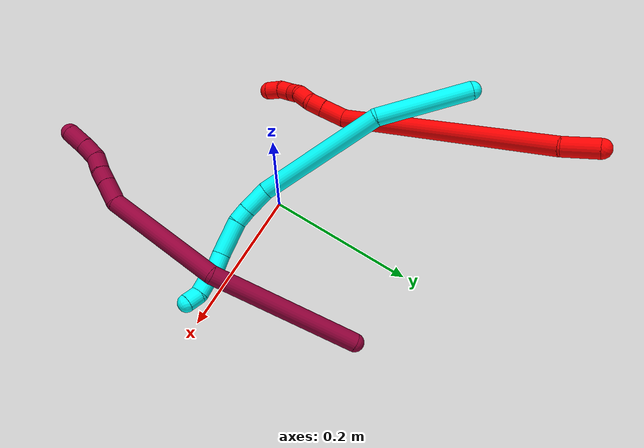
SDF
<sdf version="1.7">
 <world name="default">
  <model name="photoneo_s_sensor">
   <static>1</static>
   <pose>0 0 2 1.57079 1.57079 3.14159</pose>
   <link name="link">
    <inertial><mass>0.1</mass></inertial>
    <sensor name="sensor" type="depth">
     <update_rate>30</update_rate>
     <camera>
      <horizontal_fov>1.22</horizontal_fov>
      <image><width>1920</width><height>1200</height><format>B8G8R8</format></image>
      <clip><near>0.1</near><far>2</far></clip>
      <depth_camera><output>points</output></depth_camera>
     </camera>
     <plugin name="camera_plugin" filename="libgazebo_ros_depth_camera.so">
      <baseline>0.2</baseline>
      <alwaysOn>1</alwaysOn>
      <updateRate>0.0</updateRate>
      <cameraName>camera_ir</cameraName>
      <imageTopicName>/camera/color/image_raw</imageTopicName>
      <cameraInfoTopicName>/camera/color/camera_info</cameraInfoTopicName>
      <depthImageTopicName>/camera/depth/image_raw</depthImageTopicName>
      <depthImageCameraInfoTopicName>/camera/depth/camera_info</depthImageCameraInfoTopicName>
      <pointCloudTopicName>/camera/depth/points</pointCloudTopicName>
      <frameName>fr_optical</frameName>
      <pointCloudCutoff>0.1</pointCloudCutoff>
      <pointCloudCutoffMax>2.0</pointCloudCutoffMax>
      <distortionK1>0</distortionK1>
      <distortionK2>0</distortionK2>
      <distortionK3>0</distortionK3>
      <distortionT1>0</distortionT1>
      <distortionT2>0</distortionT2>
      <CxPrime>0</CxPrime>
      <Cx>0</Cx>
      <Cy>0</Cy>
      <focalLength>0</focalLength>
      <hackBaseline>0</hackBaseline>
     </plugin>
    </sensor>
   </link>
  </model>
  <model name="bin">
   <static>1</static>
   <link name="bottom">
    <collision name="collision-bottom">
     <pose>0 0 -0.01 0 -0 0</pose>
     <geometry><box><size>0.8 0.6 0.02</size></box></geometry>
     <surface>
      <friction><ode><mu>100</mu><mu2>100</mu2></ode></friction>
      <contact><collide_bitmask>65535</collide_bitmask></contact>
     </surface>
    </collision>
   </link>
   <link name="west_wall">
    <collision name="collision-west_wall">
     <pose>-0.41 0 0.1 0 -0 0</pose>
     <geometry><box><size>0.02 0.6 0.2</size></box></geometry>
     <surface>
      <friction><ode><mu>100</mu><mu2>100</mu2></ode></friction>
      <contact><collide_bitmask>65535</collide_bitmask></contact>
     </surface>
    </collision>
   </link>
   <link name="east_wall">
    <collision name="collision-east_wall">
     <pose>0.41 0 0.1 0 -0 0</pose>
     <geometry><box><size>0.02 0.6 0.2</size></box></geometry>
     <surface>
      <friction><ode><mu>100</mu><mu2>100</mu2></ode></friction>
      <contact><collide_bitmask>65535</collide_bitmask></contact>
     </surface>
    </collision>
   </link>
   <link name="south_wall">
    <collision name="collision-south_wall">
     <pose>0 -0.31 0.1 0 -0 0</pose>
     <geometry><box><size>0.8 0.02 0.2</size></box></geometry>
     <surface>
      <friction><ode><mu>100</mu><mu2>100</mu2></ode></friction>
      <contact><collide_bitmask>65535</collide_bitmask></contact>
     </surface>
    </collision>
   </link>
   <link name="north_wall">
    <collision name="collision-north_wall">
     <pose>0 0.31 0.1 0 -0 0</pose>
     <geometry><box><size>0.8 0.02 0.2</size></box></geometry>
     <surface>
      <friction><ode><mu>100</mu><mu2>100</mu2></ode></friction>
      <contact><collide_bitmask>65535</collide_bitmask></contact>
     </surface>
    </collision>
   </link>
  </model>
  <model name="2">
   <static>0</static>
   <link name="2">
    <collision name="collision-cylinder-e_1_1_4">
     <pose>0.006966 -0.015955 -0.014883 2.32145 0.309032 0.688093</pose>
     <geometry><cylinder><radius>0.0125</radius><length>0.045808</length></cylinder></geometry>
     <surface>
      <friction><ode><mu>1.16</mu><mu2>1.16</mu2><slip1>0</slip1><slip2>0</slip2></ode></friction>
      <contact><ode><kp>1e+06</kp><kd>1</kd><max_vel>0</max_vel><min_depth>0.001</min_depth></ode></contact>
     </surface>
    </collision>
    <visual name="visual-cylinder-e_1_1_4">
     <pose>0.006966 -0.015955 -0.014883 2.32145 0.309032 0.688093</pose>
     <geometry><cylinder><radius>0.0125</radius><length>0.045808</length></cylinder></geometry>
     <material><ambient>1 0 0 1</ambient></material>
    </visual>
    <collision name="collision-cylinder-e_2_4_5">
     <pose>0.021258 -0.141021 -0.142384 2.37201 0.046687 0.115176</pose>
     <geometry><cylinder><radius>0.0125</radius><length>0.313954</length></cylinder></geometry>
     <surface>
      <friction><ode><mu>1.16</mu><mu2>1.16</mu2><slip1>0</slip1><slip2>0</slip2></ode></friction>
      <contact><ode><kp>1e+06</kp><kd>1</kd><max_vel>0</max_vel><min_depth>0.001</min_depth></ode></contact>
     </surface>
    </collision>
    <visual name="visual-cylinder-e_2_4_5">
     <pose>0.021258 -0.141021 -0.142384 2.37201 0.046687 0.115176</pose>
     <geometry><cylinder><radius>0.0125</radius><length>0.313954</length></cylinder></geometry>
     <material><ambient>1 0 0 1</ambient></material>
    </visual>
    <collision name="collision-cylinder-e_3_5_6">
     <pose>0.031619 -0.266067 -0.261311 1.94777 0.17526 0.257118</pose>
     <geometry><cylinder><radius>0.0125</radius><length>0.034808</length></cylinder></geometry>
     <surface>
      <friction><ode><mu>1.16</mu><mu2>1.16</mu2><slip1>0</slip1><slip2>0</slip2></ode></friction>
      <contact><ode><kp>1e+06</kp><kd>1</kd><max_vel>0</max_vel><min_depth>0.001</min_depth></ode></contact>
     </surface>
    </collision>
    <visual name="visual-cylinder-e_3_5_6">
     <pose>0.031619 -0.266067 -0.261311 1.94777 0.17526 0.257118</pose>
     <geometry><cylinder><radius>0.0125</radius><length>0.034808</length></cylinder></geometry>
     <material><ambient>1 0 0 1</ambient></material>
    </visual>
    <collision name="collision-cylinder-e_4_6_7">
     <pose>0.037137 -0.291838 -0.270623 1.86716 0.236928 0.318851</pose>
     <geometry><cylinder><radius>0.0125</radius><length>0.021162</length></cylinder></geometry>
     <surface>
      <friction><ode><mu>1.16</mu><mu2>1.16</mu2><slip1>0</slip1><slip2>0</slip2></ode></friction>
      <contact><ode><kp>1e+06</kp><kd>1</kd><max_vel>0</max_vel><min_depth>0.001</min_depth></ode></contact>
     </surface>
    </collision>
    <visual name="visual-cylinder-e_4_6_7">
     <pose>0.037137 -0.291838 -0.270623 1.86716 0.236928 0.318851</pose>
     <geometry><cylinder><radius>0.0125</radius><length>0.021162</length></cylinder></geometry>
     <material><ambient>1 0 0 1</ambient></material>
    </visual>
    <collision name="collision-cylinder-e_5_7_8">
     <pose>0.037165 -0.311986 -0.279152 2.06267 -0.206951 -0.343489</pose>
     <geometry><cylinder><radius>0.0125</radius><length>0.023906</length></cylinder></geometry>
     <surface>
      <friction><ode><mu>1.16</mu><mu2>1.16</mu2><slip1>0</slip1><slip2>0</slip2></ode></friction>
      <contact><ode><kp>1e+06</kp><kd>1</kd><max_vel>0</max_vel><min_depth>0.001</min_depth></ode></contact>
     </surface>
    </collision>
    <visual name="visual-cylinder-e_5_7_8">
     <pose>0.037165 -0.311986 -0.279152 2.06267 -0.206951 -0.343489</pose>
     <geometry><cylinder><radius>0.0125</radius><length>0.023906</length></cylinder></geometry>
     <material><ambient>1 0 0 1</ambient></material>
    </visual>
    <collision name="collision-cylinder-e_6_8_9">
     <pose>0.031875 -0.328074 -0.292358 2.49676 -0.286687 -0.815633</pose>
     <geometry><cylinder><radius>0.0125</radius><length>0.020041</length></cylinder></geometry>
     <surface>
      <friction><ode><mu>1.16</mu><mu2>1.16</mu2><slip1>0</slip1><slip2>0</slip2></ode></friction>
      <contact><ode><kp>1e+06</kp><kd>1</kd><max_vel>0</max_vel><min_depth>0.001</min_depth></ode></contact>
     </surface>
    </collision>
    <visual name="visual-cylinder-e_6_8_9">
     <pose>0.031875 -0.328074 -0.292358 2.49676 -0.286687 -0.815633</pose>
     <geometry><cylinder><radius>0.0125</radius><length>0.020041</length></cylinder></geometry>
     <material><ambient>1 0 0 1</ambient></material>
    </visual>
    <collision name="collision-cylinder-e_7_9_10">
     <pose>0.02985 -0.341911 -0.305976 2.20569 0.080619 0.159267</pose>
     <geometry><cylinder><radius>0.0125</radius><length>0.020085</length></cylinder></geometry>
     <surface>
      <friction><ode><mu>1.16</mu><mu2>1.16</mu2><slip1>0</slip1><slip2>0</slip2></ode></friction>
      <contact><ode><kp>1e+06</kp><kd>1</kd><max_vel>0</max_vel><min_depth>0.001</min_depth></ode></contact>
     </surface>
    </collision>
    <visual name="visual-cylinder-e_7_9_10">
     <pose>0.02985 -0.341911 -0.305976 2.20569 0.080619 0.159267</pose>
     <geometry><cylinder><radius>0.0125</radius><length>0.020085</length></cylinder></geometry>
     <material><ambient>1 0 0 1</ambient></material>
    </visual>
    <collision name="collision-cylinder-e_8_10_2">
     <pose>0.033676 -0.356118 -0.319361 2.4516 0.302737 0.802815</pose>
     <geometry><cylinder><radius>0.0125</radius><length>0.020236</length></cylinder></geometry>
     <surface>
      <friction><ode><mu>1.16</mu><mu2>1.16</mu2><slip1>0</slip1><slip2>0</slip2></ode></friction>
      <contact><ode><kp>1e+06</kp><kd>1</kd><max_vel>0</max_vel><min_depth>0.001</min_depth></ode></contact>
     </surface>
    </collision>
    <visual name="visual-cylinder-e_8_10_2">
     <pose>0.033676 -0.356118 -0.319361 2.4516 0.302737 0.802815</pose>
     <geometry><cylinder><radius>0.0125</radius><length>0.020236</length></cylinder></geometry>
     <material><ambient>1 0 0 1</ambient></material>
    </visual>
    <collision name="collision-sphere-2">
     <pose>0.036692 -0.362265 -0.32681 0 -0 0</pose>
     <geometry><sphere><radius>0.0125</radius></sphere></geometry>
     <surface>
      <friction><ode><mu>1.16</mu><mu2>1.16</mu2><slip1>0</slip1><slip2>0</slip2></ode></friction>
      <contact><ode><kp>1e+06</kp><kd>1</kd><max_vel>0</max_vel><min_depth>0.001</min_depth></ode></contact>
     </surface>
    </collision>
    <visual name="visual-sphere-2">
     <pose>0.036692 -0.362265 -0.32681 0 -0 0</pose>
     <geometry><sphere><radius>0.0125</radius></sphere></geometry>
     <material><ambient>1 0 0 1</ambient></material>
    </visual>
    <collision name="collision-sphere-10">
     <pose>0.030659 -0.34997 -0.311913 0 -0 0</pose>
     <geometry><sphere><radius>0.0125</radius></sphere></geometry>
     <surface>
      <friction><ode><mu>1.16</mu><mu2>1.16</mu2><slip1>0</slip1><slip2>0</slip2></ode></friction>
      <contact><ode><kp>1e+06</kp><kd>1</kd><max_vel>0</max_vel><min_depth>0.001</min_depth></ode></contact>
     </surface>
    </collision>
    <visual name="visual-sphere-10">
     <pose>0.030659 -0.34997 -0.311913 0 -0 0</pose>
     <geometry><sphere><radius>0.0125</radius></sphere></geometry>
     <material><ambient>1 0 0 1</ambient></material>
    </visual>
    <collision name="collision-sphere-9">
     <pose>0.029042 -0.333852 -0.300039 0 -0 0</pose>
     <geometry><sphere><radius>0.0125</radius></sphere></geometry>
     <surface>
      <friction><ode><mu>1.16</mu><mu2>1.16</mu2><slip1>0</slip1><slip2>0</slip2></ode></friction>
      <contact><ode><kp>1e+06</kp><kd>1</kd><max_vel>0</max_vel><min_depth>0.001</min_depth></ode></contact>
     </surface>
    </collision>
    <visual name="visual-sphere-9">
     <pose>0.029042 -0.333852 -0.300039 0 -0 0</pose>
     <geometry><sphere><radius>0.0125</radius></sphere></geometry>
     <material><ambient>1 0 0 1</ambient></material>
    </visual>
    <collision name="collision-sphere-4">
     <pose>0.013932 -0.03191 -0.029766 0 -0 0</pose>
     <geometry><sphere><radius>0.0125</radius></sphere></geometry>
     <surface>
      <friction><ode><mu>1.16</mu><mu2>1.16</mu2><slip1>0</slip1><slip2>0</slip2></ode></friction>
      <contact><ode><kp>1e+06</kp><kd>1</kd><max_vel>0</max_vel><min_depth>0.001</min_depth></ode></contact>
     </surface>
    </collision>
    <visual name="visual-sphere-4">
     <pose>0.013932 -0.03191 -0.029766 0 -0 0</pose>
     <geometry><sphere><radius>0.0125</radius></sphere></geometry>
     <material><ambient>1 0 0 1</ambient></material>
    </visual>
    <collision name="collision-sphere-1">
     <geometry><sphere><radius>0.0125</radius></sphere></geometry>
     <surface>
      <friction><ode><mu>1.16</mu><mu2>1.16</mu2><slip1>0</slip1><slip2>0</slip2></ode></friction>
      <contact><ode><kp>1e+06</kp><kd>1</kd><max_vel>0</max_vel><min_depth>0.001</min_depth></ode></contact>
     </surface>
    </collision>
    <visual name="visual-sphere-1">
     <geometry><sphere><radius>0.0125</radius></sphere></geometry>
     <material><ambient>1 0 0 1</ambient></material>
    </visual>
    <collision name="collision-sphere-8">
     <pose>0.034709 -0.322297 -0.284676 0 -0 0</pose>
     <geometry><sphere><radius>0.0125</radius></sphere></geometry>
     <surface>
      <friction><ode><mu>1.16</mu><mu2>1.16</mu2><slip1>0</slip1><slip2>0</slip2></ode></friction>
      <contact><ode><kp>1e+06</kp><kd>1</kd><max_vel>0</max_vel><min_depth>0.001</min_depth></ode></contact>
     </surface>
    </collision>
    <visual name="visual-sphere-8">
     <pose>0.034709 -0.322297 -0.284676 0 -0 0</pose>
     <geometry><sphere><radius>0.0125</radius></sphere></geometry>
     <material><ambient>1 0 0 1</ambient></material>
    </visual>
    <collision name="collision-sphere-5">
     <pose>0.028584 -0.250133 -0.255003 0 -0 0</pose>
     <geometry><sphere><radius>0.0125</radius></sphere></geometry>
     <surface>
      <friction><ode><mu>1.16</mu><mu2>1.16</mu2><slip1>0</slip1><slip2>0</slip2></ode></friction>
      <contact><ode><kp>1e+06</kp><kd>1</kd><max_vel>0</max_vel><min_depth>0.001</min_depth></ode></contact>
     </surface>
    </collision>
    <visual name="visual-sphere-5">
     <pose>0.028584 -0.250133 -0.255003 0 -0 0</pose>
     <geometry><sphere><radius>0.0125</radius></sphere></geometry>
     <material><ambient>1 0 0 1</ambient></material>
    </visual>
    <collision name="collision-sphere-6">
     <pose>0.034654 -0.282001 -0.267619 0 -0 0</pose>
     <geometry><sphere><radius>0.0125</radius></sphere></geometry>
     <surface>
      <friction><ode><mu>1.16</mu><mu2>1.16</mu2><slip1>0</slip1><slip2>0</slip2></ode></friction>
      <contact><ode><kp>1e+06</kp><kd>1</kd><max_vel>0</max_vel><min_depth>0.001</min_depth></ode></contact>
     </surface>
    </collision>
    <visual name="visual-sphere-6">
     <pose>0.034654 -0.282001 -0.267619 0 -0 0</pose>
     <geometry><sphere><radius>0.0125</radius></sphere></geometry>
     <material><ambient>1 0 0 1</ambient></material>
    </visual>
    <collision name="collision-sphere-7">
     <pose>0.039621 -0.301675 -0.273627 0 -0 0</pose>
     <geometry><sphere><radius>0.0125</radius></sphere></geometry>
     <surface>
      <friction><ode><mu>1.16</mu><mu2>1.16</mu2><slip1>0</slip1><slip2>0</slip2></ode></friction>
      <contact><ode><kp>1e+06</kp><kd>1</kd><max_vel>0</max_vel><min_depth>0.001</min_depth></ode></contact>
     </surface>
    </collision>
    <visual name="visual-sphere-7">
     <pose>0.039621 -0.301675 -0.273627 0 -0 0</pose>
     <geometry><sphere><radius>0.0125</radius></sphere></geometry>
     <material><ambient>1 0 0 1</ambient></material>
    </visual>
    <inertial>
     <pose>0.023376 -0.177098 -0.170694 0 -0 0</pose>
     <mass>0.5</mass>
     <inertia>
      <ixx>0.002897</ixx>
      <ixy>0</ixy>
      <ixz>0</ixz>
      <iyy>-0.001571</iyy>
      <iyz>0</iyz>
      <izz>0.001668</izz>
     </inertia>
    </inertial>
   </link>
   <pose>-0.185042 0.331869 0.224131 -0.196769 -0.422812 -0.207319</pose>
  </model>
  <model name="3">
   <static>0</static>
   <link name="3">
    <collision name="collision-cylinder-e_1_1_4">
     <pose>0.064365 0.006994 0.005237 -0.928008 1.43588 -0.824153</pose>
     <geometry><cylinder><radius>0.0125</radius><length>0.12991</length></cylinder></geometry>
     <surface>
      <friction><ode><mu>1.16</mu><mu2>1.16</mu2><slip1>0</slip1><slip2>0</slip2></ode></friction>
      <contact><ode><kp>1e+06</kp><kd>1</kd><max_vel>0</max_vel><min_depth>0.001</min_depth></ode></contact>
     </surface>
    </collision>
    <visual name="visual-cylinder-e_1_1_4">
     <pose>0.064365 0.006994 0.005237 -0.928008 1.43588 -0.824153</pose>
     <geometry><cylinder><radius>0.0125</radius><length>0.12991</length></cylinder></geometry>
     <material><ambient>0.003922 1 0.996078 1</ambient></material>
    </visual>
    <collision name="collision-cylinder-e_2_4_5">
     <pose>0.215503 -0.009305 0.007753 1.68712 1.30685 1.42089</pose>
     <geometry><cylinder><radius>0.0125</radius><length>0.179773</length></cylinder></geometry>
     <surface>
      <friction><ode><mu>1.16</mu><mu2>1.16</mu2><slip1>0</slip1><slip2>0</slip2></ode></friction>
      <contact><ode><kp>1e+06</kp><kd>1</kd><max_vel>0</max_vel><min_depth>0.001</min_depth></ode></contact>
     </surface>
    </collision>
    <visual name="visual-cylinder-e_2_4_5">
     <pose>0.215503 -0.009305 0.007753 1.68712 1.30685 1.42089</pose>
     <geometry><cylinder><radius>0.0125</radius><length>0.179773</length></cylinder></geometry>
     <material><ambient>0.003922 1 0.996078 1</ambient></material>
    </visual>
    <collision name="collision-cylinder-e_3_5_6">
     <pose>0.319138 -0.036122 -0.001006 2.61307 1.17774 2.37177</pose>
     <geometry><cylinder><radius>0.0125</radius><length>0.036506</length></cylinder></geometry>
     <surface>
      <friction><ode><mu>1.16</mu><mu2>1.16</mu2><slip1>0</slip1><slip2>0</slip2></ode></friction>
      <contact><ode><kp>1e+06</kp><kd>1</kd><max_vel>0</max_vel><min_depth>0.001</min_depth></ode></contact>
     </surface>
    </collision>
    <visual name="visual-cylinder-e_3_5_6">
     <pose>0.319138 -0.036122 -0.001006 2.61307 1.17774 2.37177</pose>
     <geometry><cylinder><radius>0.0125</radius><length>0.036506</length></cylinder></geometry>
     <material><ambient>0.003922 1 0.996078 1</ambient></material>
    </visual>
    <collision name="collision-cylinder-e_4_6_7">
     <pose>0.345446 -0.04133 -0.011874 2.80645 1.07452 2.58825</pose>
     <geometry><cylinder><radius>0.0125</radius><length>0.021487</length></cylinder></geometry>
     <surface>
      <friction><ode><mu>1.16</mu><mu2>1.16</mu2><slip1>0</slip1><slip2>0</slip2></ode></friction>
      <contact><ode><kp>1e+06</kp><kd>1</kd><max_vel>0</max_vel><min_depth>0.001</min_depth></ode></contact>
     </surface>
    </collision>
    <visual name="visual-cylinder-e_4_6_7">
     <pose>0.345446 -0.04133 -0.011874 2.80645 1.07452 2.58825</pose>
     <geometry><cylinder><radius>0.0125</radius><length>0.021487</length></cylinder></geometry>
     <material><ambient>0.003922 1 0.996078 1</ambient></material>
    </visual>
    <collision name="collision-cylinder-e_5_7_8">
     <pose>0.372944 -0.049467 -0.031781 2.73707 0.833271 2.27374</pose>
     <geometry><cylinder><radius>0.0125</radius><length>0.048775</length></cylinder></geometry>
     <surface>
      <friction><ode><mu>1.16</mu><mu2>1.16</mu2><slip1>0</slip1><slip2>0</slip2></ode></friction>
      <contact><ode><kp>1e+06</kp><kd>1</kd><max_vel>0</max_vel><min_depth>0.001</min_depth></ode></contact>
     </surface>
    </collision>
    <visual name="visual-cylinder-e_5_7_8">
     <pose>0.372944 -0.049467 -0.031781 2.73707 0.833271 2.27374</pose>
     <geometry><cylinder><radius>0.0125</radius><length>0.048775</length></cylinder></geometry>
     <material><ambient>0.003922 1 0.996078 1</ambient></material>
    </visual>
    <collision name="collision-cylinder-e_6_8_9">
     <pose>0.397892 -0.057283 -0.054712 2.96998 0.713282 2.68778</pose>
     <geometry><cylinder><radius>0.0125</radius><length>0.021085</length></cylinder></geometry>
     <surface>
      <friction><ode><mu>1.16</mu><mu2>1.16</mu2><slip1>0</slip1><slip2>0</slip2></ode></friction>
      <contact><ode><kp>1e+06</kp><kd>1</kd><max_vel>0</max_vel><min_depth>0.001</min_depth></ode></contact>
     </surface>
    </collision>
    <visual name="visual-cylinder-e_6_8_9">
     <pose>0.397892 -0.057283 -0.054712 2.96998 0.713282 2.68778</pose>
     <geometry><cylinder><radius>0.0125</radius><length>0.021085</length></cylinder></geometry>
     <material><ambient>0.003922 1 0.996078 1</ambient></material>
    </visual>
    <collision name="collision-cylinder-e_7_9_10">
     <pose>0.412728 -0.057842 -0.069663 -3.02895 0.838211 -2.88982</pose>
     <geometry><cylinder><radius>0.0125</radius><length>0.021354</length></cylinder></geometry>
     <surface>
      <friction><ode><mu>1.16</mu><mu2>1.16</mu2><slip1>0</slip1><slip2>0</slip2></ode></friction>
      <contact><ode><kp>1e+06</kp><kd>1</kd><max_vel>0</max_vel><min_depth>0.001</min_depth></ode></contact>
     </surface>
    </collision>
    <visual name="visual-cylinder-e_7_9_10">
     <pose>0.412728 -0.057842 -0.069663 -3.02895 0.838211 -2.88982</pose>
     <geometry><cylinder><radius>0.0125</radius><length>0.021354</length></cylinder></geometry>
     <material><ambient>0.003922 1 0.996078 1</ambient></material>
    </visual>
    <collision name="collision-cylinder-e_8_10_11">
     <pose>0.42775 -0.056226 -0.084239 -3.0332 0.755312 -2.86977</pose>
     <geometry><cylinder><radius>0.0125</radius><length>0.020669</length></cylinder></geometry>
     <surface>
      <friction><ode><mu>1.16</mu><mu2>1.16</mu2><slip1>0</slip1><slip2>0</slip2></ode></friction>
      <contact><ode><kp>1e+06</kp><kd>1</kd><max_vel>0</max_vel><min_depth>0.001</min_depth></ode></contact>
     </surface>
    </collision>
    <visual name="visual-cylinder-e_8_10_11">
     <pose>0.42775 -0.056226 -0.084239 -3.0332 0.755312 -2.86977</pose>
     <geometry><cylinder><radius>0.0125</radius><length>0.020669</length></cylinder></geometry>
     <material><ambient>0.003922 1 0.996078 1</ambient></material>
    </visual>
    <collision name="collision-cylinder-e_9_11_2">
     <pose>0.44353 -0.052214 -0.096033 -2.50371 1.01754 -2.07248</pose>
     <geometry><cylinder><radius>0.0125</radius><length>0.020441</length></cylinder></geometry>
     <surface>
      <friction><ode><mu>1.16</mu><mu2>1.16</mu2><slip1>0</slip1><slip2>0</slip2></ode></friction>
      <contact><ode><kp>1e+06</kp><kd>1</kd><max_vel>0</max_vel><min_depth>0.001</min_depth></ode></contact>
     </surface>
    </collision>
    <visual name="visual-cylinder-e_9_11_2">
     <pose>0.44353 -0.052214 -0.096033 -2.50371 1.01754 -2.07248</pose>
     <geometry><cylinder><radius>0.0125</radius><length>0.020441</length></cylinder></geometry>
     <material><ambient>0.003922 1 0.996078 1</ambient></material>
    </visual>
    <collision name="collision-sphere-2">
     <pose>0.452226 -0.049015 -0.100347 0 -0 0</pose>
     <geometry><sphere><radius>0.0125</radius></sphere></geometry>
     <surface>
      <friction><ode><mu>1.16</mu><mu2>1.16</mu2><slip1>0</slip1><slip2>0</slip2></ode></friction>
      <contact><ode><kp>1e+06</kp><kd>1</kd><max_vel>0</max_vel><min_depth>0.001</min_depth></ode></contact>
     </surface>
    </collision>
    <visual name="visual-sphere-2">
     <pose>0.452226 -0.049015 -0.100347 0 -0 0</pose>
     <geometry><sphere><radius>0.0125</radius></sphere></geometry>
     <material><ambient>0.003922 1 0.996078 1</ambient></material>
    </visual>
    <collision name="collision-sphere-11">
     <pose>0.434835 -0.055412 -0.091718 0 -0 0</pose>
     <geometry><sphere><radius>0.0125</radius></sphere></geometry>
     <surface>
      <friction><ode><mu>1.16</mu><mu2>1.16</mu2><slip1>0</slip1><slip2>0</slip2></ode></friction>
      <contact><ode><kp>1e+06</kp><kd>1</kd><max_vel>0</max_vel><min_depth>0.001</min_depth></ode></contact>
     </surface>
    </collision>
    <visual name="visual-sphere-11">
     <pose>0.434835 -0.055412 -0.091718 0 -0 0</pose>
     <geometry><sphere><radius>0.0125</radius></sphere></geometry>
     <material><ambient>0.003922 1 0.996078 1</ambient></material>
    </visual>
    <collision name="collision-sphere-10">
     <pose>0.420666 -0.05704 -0.076759 0 -0 0</pose>
     <geometry><sphere><radius>0.0125</radius></sphere></geometry>
     <surface>
      <friction><ode><mu>1.16</mu><mu2>1.16</mu2><slip1>0</slip1><slip2>0</slip2></ode></friction>
      <contact><ode><kp>1e+06</kp><kd>1</kd><max_vel>0</max_vel><min_depth>0.001</min_depth></ode></contact>
     </surface>
    </collision>
    <visual name="visual-sphere-10">
     <pose>0.420666 -0.05704 -0.076759 0 -0 0</pose>
     <geometry><sphere><radius>0.0125</radius></sphere></geometry>
     <material><ambient>0.003922 1 0.996078 1</ambient></material>
    </visual>
    <collision name="collision-sphere-9">
     <pose>0.40479 -0.058645 -0.062568 0 -0 0</pose>
     <geometry><sphere><radius>0.0125</radius></sphere></geometry>
     <surface>
      <friction><ode><mu>1.16</mu><mu2>1.16</mu2><slip1>0</slip1><slip2>0</slip2></ode></friction>
      <contact><ode><kp>1e+06</kp><kd>1</kd><max_vel>0</max_vel><min_depth>0.001</min_depth></ode></contact>
     </surface>
    </collision>
    <visual name="visual-sphere-9">
     <pose>0.40479 -0.058645 -0.062568 0 -0 0</pose>
     <geometry><sphere><radius>0.0125</radius></sphere></geometry>
     <material><ambient>0.003922 1 0.996078 1</ambient></material>
    </visual>
    <collision name="collision-sphere-4">
     <pose>0.128729 0.013987 0.010475 0 -0 0</pose>
     <geometry><sphere><radius>0.0125</radius></sphere></geometry>
     <surface>
      <friction><ode><mu>1.16</mu><mu2>1.16</mu2><slip1>0</slip1><slip2>0</slip2></ode></friction>
      <contact><ode><kp>1e+06</kp><kd>1</kd><max_vel>0</max_vel><min_depth>0.001</min_depth></ode></contact>
     </surface>
    </collision>
    <visual name="visual-sphere-4">
     <pose>0.128729 0.013987 0.010475 0 -0 0</pose>
     <geometry><sphere><radius>0.0125</radius></sphere></geometry>
     <material><ambient>0.003922 1 0.996078 1</ambient></material>
    </visual>
    <collision name="collision-sphere-1">
     <geometry><sphere><radius>0.0125</radius></sphere></geometry>
     <surface>
      <friction><ode><mu>1.16</mu><mu2>1.16</mu2><slip1>0</slip1><slip2>0</slip2></ode></friction>
      <contact><ode><kp>1e+06</kp><kd>1</kd><max_vel>0</max_vel><min_depth>0.001</min_depth></ode></contact>
     </surface>
    </collision>
    <visual name="visual-sphere-1">
     <geometry><sphere><radius>0.0125</radius></sphere></geometry>
     <material><ambient>0.003922 1 0.996078 1</ambient></material>
    </visual>
    <collision name="collision-sphere-8">
     <pose>0.390994 -0.055922 -0.046857 0 -0 0</pose>
     <geometry><sphere><radius>0.0125</radius></sphere></geometry>
     <surface>
      <friction><ode><mu>1.16</mu><mu2>1.16</mu2><slip1>0</slip1><slip2>0</slip2></ode></friction>
      <contact><ode><kp>1e+06</kp><kd>1</kd><max_vel>0</max_vel><min_depth>0.001</min_depth></ode></contact>
     </surface>
    </collision>
    <visual name="visual-sphere-8">
     <pose>0.390994 -0.055922 -0.046857 0 -0 0</pose>
     <geometry><sphere><radius>0.0125</radius></sphere></geometry>
     <material><ambient>0.003922 1 0.996078 1</ambient></material>
    </visual>
    <collision name="collision-sphere-5">
     <pose>0.302277 -0.032597 0.005031 0 -0 0</pose>
     <geometry><sphere><radius>0.0125</radius></sphere></geometry>
     <surface>
      <friction><ode><mu>1.16</mu><mu2>1.16</mu2><slip1>0</slip1><slip2>0</slip2></ode></friction>
      <contact><ode><kp>1e+06</kp><kd>1</kd><max_vel>0</max_vel><min_depth>0.001</min_depth></ode></contact>
     </surface>
    </collision>
    <visual name="visual-sphere-5">
     <pose>0.302277 -0.032597 0.005031 0 -0 0</pose>
     <geometry><sphere><radius>0.0125</radius></sphere></geometry>
     <material><ambient>0.003922 1 0.996078 1</ambient></material>
    </visual>
    <collision name="collision-sphere-6">
     <pose>0.335999 -0.039648 -0.007043 0 -0 0</pose>
     <geometry><sphere><radius>0.0125</radius></sphere></geometry>
     <surface>
      <friction><ode><mu>1.16</mu><mu2>1.16</mu2><slip1>0</slip1><slip2>0</slip2></ode></friction>
      <contact><ode><kp>1e+06</kp><kd>1</kd><max_vel>0</max_vel><min_depth>0.001</min_depth></ode></contact>
     </surface>
    </collision>
    <visual name="visual-sphere-6">
     <pose>0.335999 -0.039648 -0.007043 0 -0 0</pose>
     <geometry><sphere><radius>0.0125</radius></sphere></geometry>
     <material><ambient>0.003922 1 0.996078 1</ambient></material>
    </visual>
    <collision name="collision-sphere-7">
     <pose>0.354894 -0.043013 -0.016705 0 -0 0</pose>
     <geometry><sphere><radius>0.0125</radius></sphere></geometry>
     <surface>
      <friction><ode><mu>1.16</mu><mu2>1.16</mu2><slip1>0</slip1><slip2>0</slip2></ode></friction>
      <contact><ode><kp>1e+06</kp><kd>1</kd><max_vel>0</max_vel><min_depth>0.001</min_depth></ode></contact>
     </surface>
    </collision>
    <visual name="visual-sphere-7">
     <pose>0.354894 -0.043013 -0.016705 0 -0 0</pose>
     <geometry><sphere><radius>0.0125</radius></sphere></geometry>
     <material><ambient>0.003922 1 0.996078 1</ambient></material>
    </visual>
    <inertial>
     <pose>0.238954 -0.020112 -0.012226 0 -0 0</pose>
     <mass>0.5</mass>
     <inertia>
      <ixx>0.000176</ixx>
      <ixy>0</ixy>
      <ixz>0</ixz>
      <iyy>0.000776</iyy>
      <iyz>0</iyz>
      <izz>-0.000577</izz>
     </inertia>
    </inertial>
   </link>
   <pose>-0.227195 0.158285 0.129873 1.80975 0.191334 -0.654758</pose>
  </model>
  <model name="8">
   <static>0</static>
   <link name="8">
    <collision name="collision-cylinder-e_1_1_4">
     <pose>-0.0149 -0.003303 -0.102487 3.10937 -0.1443 -2.70294</pose>
     <geometry><cylinder><radius>0.0125</radius><length>0.207233</length></cylinder></geometry>
     <surface>
      <friction><ode><mu>1.16</mu><mu2>1.16</mu2><slip1>0</slip1><slip2>0</slip2></ode></friction>
      <contact><ode><kp>1e+06</kp><kd>1</kd><max_vel>0</max_vel><min_depth>0.001</min_depth></ode></contact>
     </surface>
    </collision>
    <visual name="visual-cylinder-e_1_1_4">
     <pose>-0.0149 -0.003303 -0.102487 3.10937 -0.1443 -2.70294</pose>
     <geometry><cylinder><radius>0.0125</radius><length>0.207233</length></cylinder></geometry>
     <material><ambient>0.584314 0 0.227451 1</ambient></material>
    </visual>
    <collision name="collision-cylinder-e_2_4_5">
     <pose>-0.030083 -0.043924 -0.277866 2.66843 -0.003459 -0.014347</pose>
     <geometry><cylinder><radius>0.0125</radius><length>0.163781</length></cylinder></geometry>
     <surface>
      <friction><ode><mu>1.16</mu><mu2>1.16</mu2><slip1>0</slip1><slip2>0</slip2></ode></friction>
      <contact><ode><kp>1e+06</kp><kd>1</kd><max_vel>0</max_vel><min_depth>0.001</min_depth></ode></contact>
     </surface>
    </collision>
    <visual name="visual-cylinder-e_2_4_5">
     <pose>-0.030083 -0.043924 -0.277866 2.66843 -0.003459 -0.014347</pose>
     <geometry><cylinder><radius>0.0125</radius><length>0.163781</length></cylinder></geometry>
     <material><ambient>0.584314 0 0.227451 1</ambient></material>
    </visual>
    <collision name="collision-cylinder-e_3_5_6">
     <pose>-0.024258 -0.089841 -0.362611 2.51385 0.395215 1.10539</pose>
     <geometry><cylinder><radius>0.0125</radius><length>0.031732</length></cylinder></geometry>
     <surface>
      <friction><ode><mu>1.16</mu><mu2>1.16</mu2><slip1>0</slip1><slip2>0</slip2></ode></friction>
      <contact><ode><kp>1e+06</kp><kd>1</kd><max_vel>0</max_vel><min_depth>0.001</min_depth></ode></contact>
     </surface>
    </collision>
    <visual name="visual-cylinder-e_3_5_6">
     <pose>-0.024258 -0.089841 -0.362611 2.51385 0.395215 1.10539</pose>
     <geometry><cylinder><radius>0.0125</radius><length>0.031732</length></cylinder></geometry>
     <material><ambient>0.584314 0 0.227451 1</ambient></material>
    </visual>
    <collision name="collision-cylinder-e_4_6_7">
     <pose>-0.014342 -0.103638 -0.382147 2.54703 0.389502 1.14408</pose>
     <geometry><cylinder><radius>0.0125</radius><length>0.020055</length></cylinder></geometry>
     <surface>
      <friction><ode><mu>1.16</mu><mu2>1.16</mu2><slip1>0</slip1><slip2>0</slip2></ode></friction>
      <contact><ode><kp>1e+06</kp><kd>1</kd><max_vel>0</max_vel><min_depth>0.001</min_depth></ode></contact>
     </surface>
    </collision>
    <visual name="visual-cylinder-e_4_6_7">
     <pose>-0.014342 -0.103638 -0.382147 2.54703 0.389502 1.14408</pose>
     <geometry><cylinder><radius>0.0125</radius><length>0.020055</length></cylinder></geometry>
     <material><ambient>0.584314 0 0.227451 1</ambient></material>
    </visual>
    <collision name="collision-cylinder-e_5_7_8">
     <pose>-0.005324 -0.115262 -0.397266 2.42868 0.487458 1.17761</pose>
     <geometry><cylinder><radius>0.0125</radius><length>0.022249</length></cylinder></geometry>
     <surface>
      <friction><ode><mu>1.16</mu><mu2>1.16</mu2><slip1>0</slip1><slip2>0</slip2></ode></friction>
      <contact><ode><kp>1e+06</kp><kd>1</kd><max_vel>0</max_vel><min_depth>0.001</min_depth></ode></contact>
     </surface>
    </collision>
    <visual name="visual-cylinder-e_5_7_8">
     <pose>-0.005324 -0.115262 -0.397266 2.42868 0.487458 1.17761</pose>
     <geometry><cylinder><radius>0.0125</radius><length>0.022249</length></cylinder></geometry>
     <material><ambient>0.584314 0 0.227451 1</ambient></material>
    </visual>
    <collision name="collision-cylinder-e_6_8_9">
     <pose>0.001666 -0.128011 -0.415081 2.59467 0.145348 0.507902</pose>
     <geometry><cylinder><radius>0.0125</radius><length>0.024564</length></cylinder></geometry>
     <surface>
      <friction><ode><mu>1.16</mu><mu2>1.16</mu2><slip1>0</slip1><slip2>0</slip2></ode></friction>
      <contact><ode><kp>1e+06</kp><kd>1</kd><max_vel>0</max_vel><min_depth>0.001</min_depth></ode></contact>
     </surface>
    </collision>
    <visual name="visual-cylinder-e_6_8_9">
     <pose>0.001666 -0.128011 -0.415081 2.59467 0.145348 0.507902</pose>
     <geometry><cylinder><radius>0.0125</radius><length>0.024564</length></cylinder></geometry>
     <material><ambient>0.584314 0 0.227451 1</ambient></material>
    </visual>
    <collision name="collision-cylinder-e_7_9_2">
     <pose>0.004544 -0.141915 -0.438579 2.61742 0.072446 0.268557</pose>
     <geometry><cylinder><radius>0.0125</radius><length>0.030385</length></cylinder></geometry>
     <surface>
      <friction><ode><mu>1.16</mu><mu2>1.16</mu2><slip1>0</slip1><slip2>0</slip2></ode></friction>
      <contact><ode><kp>1e+06</kp><kd>1</kd><max_vel>0</max_vel><min_depth>0.001</min_depth></ode></contact>
     </surface>
    </collision>
    <visual name="visual-cylinder-e_7_9_2">
     <pose>0.004544 -0.141915 -0.438579 2.61742 0.072446 0.268557</pose>
     <geometry><cylinder><radius>0.0125</radius><length>0.030385</length></cylinder></geometry>
     <material><ambient>0.584314 0 0.227451 1</ambient></material>
    </visual>
    <collision name="collision-sphere-2">
     <pose>0.005644 -0.149499 -0.451698 0 -0 0</pose>
     <geometry><sphere><radius>0.0125</radius></sphere></geometry>
     <surface>
      <friction><ode><mu>1.16</mu><mu2>1.16</mu2><slip1>0</slip1><slip2>0</slip2></ode></friction>
      <contact><ode><kp>1e+06</kp><kd>1</kd><max_vel>0</max_vel><min_depth>0.001</min_depth></ode></contact>
     </surface>
    </collision>
    <visual name="visual-sphere-2">
     <pose>0.005644 -0.149499 -0.451698 0 -0 0</pose>
     <geometry><sphere><radius>0.0125</radius></sphere></geometry>
     <material><ambient>0.584314 0 0.227451 1</ambient></material>
    </visual>
    <collision name="collision-sphere-9">
     <pose>0.003445 -0.134331 -0.425461 0 -0 0</pose>
     <geometry><sphere><radius>0.0125</radius></sphere></geometry>
     <surface>
      <friction><ode><mu>1.16</mu><mu2>1.16</mu2><slip1>0</slip1><slip2>0</slip2></ode></friction>
      <contact><ode><kp>1e+06</kp><kd>1</kd><max_vel>0</max_vel><min_depth>0.001</min_depth></ode></contact>
     </surface>
    </collision>
    <visual name="visual-sphere-9">
     <pose>0.003445 -0.134331 -0.425461 0 -0 0</pose>
     <geometry><sphere><radius>0.0125</radius></sphere></geometry>
     <material><ambient>0.584314 0 0.227451 1</ambient></material>
    </visual>
    <collision name="collision-sphere-4">
     <pose>-0.0298 -0.006606 -0.204973 0 -0 0</pose>
     <geometry><sphere><radius>0.0125</radius></sphere></geometry>
     <surface>
      <friction><ode><mu>1.16</mu><mu2>1.16</mu2><slip1>0</slip1><slip2>0</slip2></ode></friction>
      <contact><ode><kp>1e+06</kp><kd>1</kd><max_vel>0</max_vel><min_depth>0.001</min_depth></ode></contact>
     </surface>
    </collision>
    <visual name="visual-sphere-4">
     <pose>-0.0298 -0.006606 -0.204973 0 -0 0</pose>
     <geometry><sphere><radius>0.0125</radius></sphere></geometry>
     <material><ambient>0.584314 0 0.227451 1</ambient></material>
    </visual>
    <collision name="collision-sphere-1">
     <geometry><sphere><radius>0.0125</radius></sphere></geometry>
     <surface>
      <friction><ode><mu>1.16</mu><mu2>1.16</mu2><slip1>0</slip1><slip2>0</slip2></ode></friction>
      <contact><ode><kp>1e+06</kp><kd>1</kd><max_vel>0</max_vel><min_depth>0.001</min_depth></ode></contact>
     </surface>
    </collision>
    <visual name="visual-sphere-1">
     <geometry><sphere><radius>0.0125</radius></sphere></geometry>
     <material><ambient>0.584314 0 0.227451 1</ambient></material>
    </visual>
    <collision name="collision-sphere-8">
     <pose>-0.000113 -0.121691 -0.404701 0 -0 0</pose>
     <geometry><sphere><radius>0.0125</radius></sphere></geometry>
     <surface>
      <friction><ode><mu>1.16</mu><mu2>1.16</mu2><slip1>0</slip1><slip2>0</slip2></ode></friction>
      <contact><ode><kp>1e+06</kp><kd>1</kd><max_vel>0</max_vel><min_depth>0.001</min_depth></ode></contact>
     </surface>
    </collision>
    <visual name="visual-sphere-8">
     <pose>-0.000113 -0.121691 -0.404701 0 -0 0</pose>
     <geometry><sphere><radius>0.0125</radius></sphere></geometry>
     <material><ambient>0.584314 0 0.227451 1</ambient></material>
    </visual>
    <collision name="collision-sphere-5">
     <pose>-0.030367 -0.081241 -0.35076 0 -0 0</pose>
     <geometry><sphere><radius>0.0125</radius></sphere></geometry>
     <surface>
      <friction><ode><mu>1.16</mu><mu2>1.16</mu2><slip1>0</slip1><slip2>0</slip2></ode></friction>
      <contact><ode><kp>1e+06</kp><kd>1</kd><max_vel>0</max_vel><min_depth>0.001</min_depth></ode></contact>
     </surface>
    </collision>
    <visual name="visual-sphere-5">
     <pose>-0.030367 -0.081241 -0.35076 0 -0 0</pose>
     <geometry><sphere><radius>0.0125</radius></sphere></geometry>
     <material><ambient>0.584314 0 0.227451 1</ambient></material>
    </visual>
    <collision name="collision-sphere-6">
     <pose>-0.01815 -0.098441 -0.374462 0 -0 0</pose>
     <geometry><sphere><radius>0.0125</radius></sphere></geometry>
     <surface>
      <friction><ode><mu>1.16</mu><mu2>1.16</mu2><slip1>0</slip1><slip2>0</slip2></ode></friction>
      <contact><ode><kp>1e+06</kp><kd>1</kd><max_vel>0</max_vel><min_depth>0.001</min_depth></ode></contact>
     </surface>
    </collision>
    <visual name="visual-sphere-6">
     <pose>-0.01815 -0.098441 -0.374462 0 -0 0</pose>
     <geometry><sphere><radius>0.0125</radius></sphere></geometry>
     <material><ambient>0.584314 0 0.227451 1</ambient></material>
    </visual>
    <collision name="collision-sphere-7">
     <pose>-0.010534 -0.108834 -0.389831 0 -0 0</pose>
     <geometry><sphere><radius>0.0125</radius></sphere></geometry>
     <surface>
      <friction><ode><mu>1.16</mu><mu2>1.16</mu2><slip1>0</slip1><slip2>0</slip2></ode></friction>
      <contact><ode><kp>1e+06</kp><kd>1</kd><max_vel>0</max_vel><min_depth>0.001</min_depth></ode></contact>
     </surface>
    </collision>
    <visual name="visual-sphere-7">
     <pose>-0.010534 -0.108834 -0.389831 0 -0 0</pose>
     <geometry><sphere><radius>0.0125</radius></sphere></geometry>
     <material><ambient>0.584314 0 0.227451 1</ambient></material>
    </visual>
    <inertial>
     <pose>-0.018023 -0.045658 -0.236559 0 -0 0</pose>
     <mass>0.5</mass>
     <inertia>
      <ixx>-0.000603</ixx>
      <ixy>0</ixy>
      <ixz>0</ixz>
      <iyy>1.9e-05</iyy>
      <iyz>0</iyz>
      <izz>0.000271</izz>
     </inertia>
    </inertial>
   </link>
   <pose>0.113818 0.191014 0.011515 2.01079 -0.309632 3.05166</pose>
  </model>
 </world>
</sdf>
